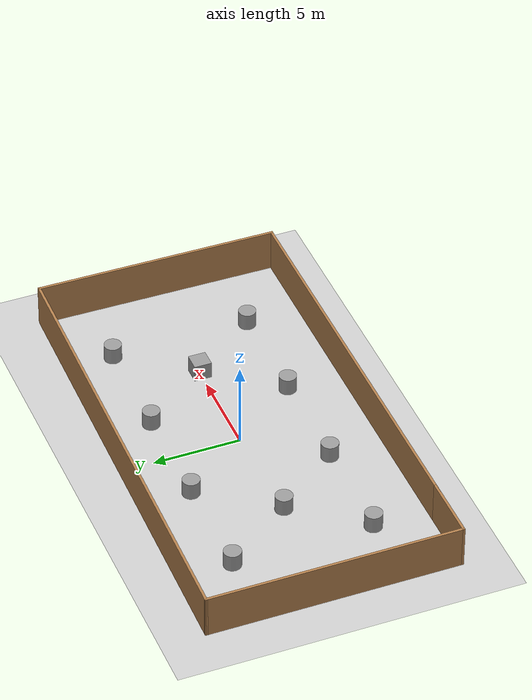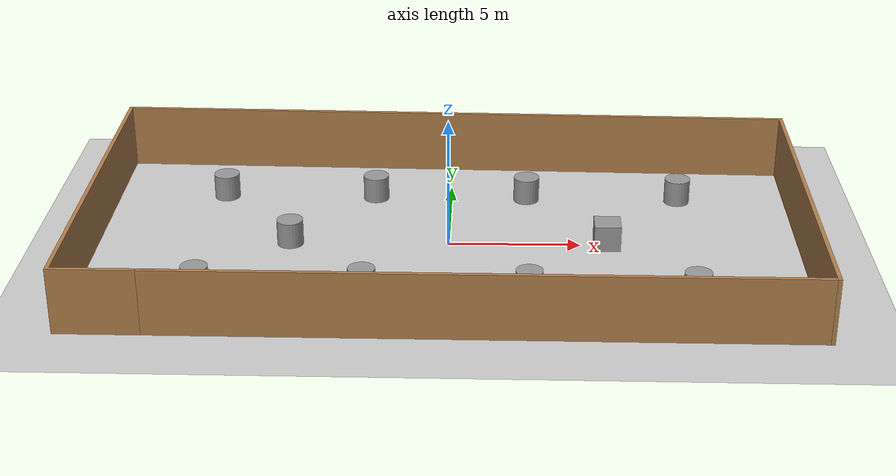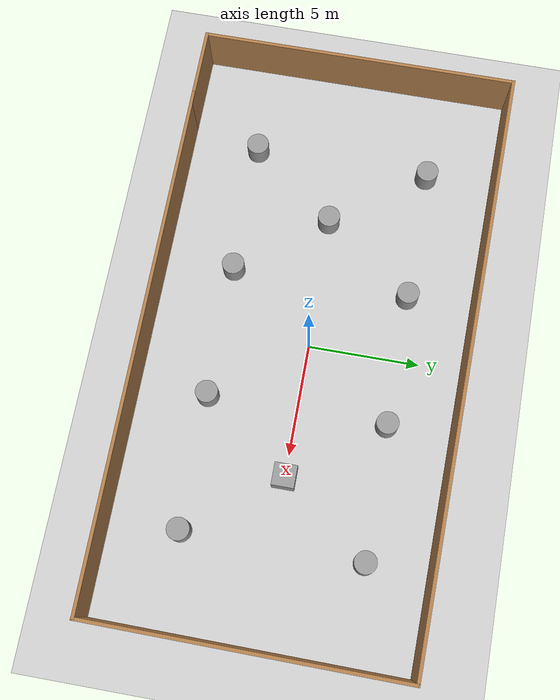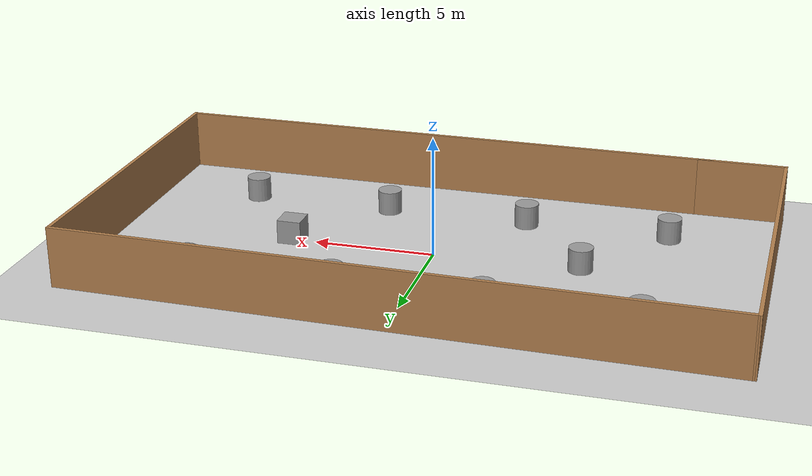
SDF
<sdf version="1.7">
 <world name="default">
  <light name="sun" type="directional">
   <pose>0 0 10 0 -0 0</pose>
   <diffuse>0.8 0.8 0.8 1</diffuse>
   <specular>0.2 0.2 0.2 1</specular>
   <attenuation>
    <range>1000</range>
    <constant>0.9</constant>
    <linear>0.01</linear>
    <quadratic>0.001</quadratic>
   </attenuation>
   <direction>-0.5 0.1 -0.9</direction>
   <spot><inner_angle>0</inner_angle><outer_angle>0</outer_angle><falloff>0</falloff></spot>
  </light>
  <model name="ground_plane">
   <static>1</static>
   <link name="link">
    <collision name="collision">
     <geometry><plane><normal>0 0 1</normal><size>100 100</size></plane></geometry>
     <surface>
      <contact><collide_bitmask>65535</collide_bitmask></contact>
      <friction><ode><mu>100</mu><mu2>50</mu2></ode></friction>
     </surface>
    </collision>
    <visual name="visual">
     <cast_shadows>0</cast_shadows>
     <geometry><plane><normal>0 0 1</normal><size>100 100</size></plane></geometry>
     <material>
      <script><uri>file://media/materials/scripts/gazebo.material</uri><name>Gazebo/Grey</name></script>
     </material>
    </visual>
   </link>
  </model>
  <gravity>0 0 -9.8</gravity>
  <magnetic_field>6e-06 2.3e-05 -4.2e-05</magnetic_field>
  <atmosphere type="adiabatic"/>
  <physics type="ode">
   <max_step_size>0.001</max_step_size>
   <real_time_factor>1</real_time_factor>
   <real_time_update_rate>1000</real_time_update_rate>
  </physics>
  <scene><ambient>0.4 0.4 0.4 1</ambient><background>0.7 0.7 0.7 1</background><shadows>1</shadows></scene>
  <spherical_coordinates>
   <surface_model>EARTH_WGS84</surface_model>
   <latitude_deg>0</latitude_deg>
   <longitude_deg>0</longitude_deg>
   <elevation>0</elevation>
   <heading_deg>0</heading_deg>
  </spherical_coordinates>
  <model name="car1_test">
   <link name="Wall_1">
    <collision name="Wall_1_Collision">
     <geometry><box><size>23.6436 0.15 2.5</size></box></geometry>
     <pose>0 0 1.25 0 -0 0</pose>
    </collision>
    <visual name="Wall_1_Visual">
     <pose>0 0 1.25 0 -0 0</pose>
     <geometry><box><size>23.6436 0.15 2.5</size></box></geometry>
     <material>
      <script><uri>file://media/materials/scripts/gazebo.material</uri><name>Gazebo/Wood</name></script>
      <ambient>1 1 1 1</ambient>
     </material>
     <meta><layer>0</layer></meta>
    </visual>
    <pose>1.4708 -7.17268 0 0 -0 0</pose>
   </link>
   <link name="Wall_10">
    <collision name="Wall_10_Collision">
     <geometry><box><size>14.0004 0.15 2.5</size></box></geometry>
     <pose>0 0 1.25 0 -0 0</pose>
    </collision>
    <visual name="Wall_10_Visual">
     <pose>0 0 1.25 0 -0 0</pose>
     <geometry><box><size>14.0004 0.15 2.5</size></box></geometry>
     <material>
      <script><uri>file://media/materials/scripts/gazebo.material</uri><name>Gazebo/Wood</name></script>
      <ambient>1 1 1 1</ambient>
     </material>
     <meta><layer>0</layer></meta>
    </visual>
    <pose>13.308 -0.253083 0 0 -0 -1.57848</pose>
   </link>
   <link name="Wall_5">
    <collision name="Wall_5_Collision">
     <geometry><box><size>3.75 0.15 2.5</size></box></geometry>
     <pose>0 0 1.25 0 -0 0</pose>
    </collision>
    <visual name="Wall_5_Visual">
     <pose>0 0 1.25 0 -0 0</pose>
     <geometry><box><size>3.75 0.15 2.5</size></box></geometry>
     <material>
      <script><uri>file://media/materials/scripts/gazebo.material</uri><name>Gazebo/Wood</name></script>
      <ambient>1 1 1 1</ambient>
     </material>
     <meta><layer>0</layer></meta>
    </visual>
    <pose>-11.5612 -7.17268 0 0 -0 0</pose>
   </link>
   <link name="Wall_8">
    <collision name="Wall_8_Collision">
     <geometry><box><size>14.5 0.15 2.5</size></box></geometry>
     <pose>0 0 1.25 0 -0 0</pose>
    </collision>
    <visual name="Wall_8_Visual">
     <pose>0 0 1.25 0 -0 0</pose>
     <geometry><box><size>14.5 0.15 2.5</size></box></geometry>
     <material>
      <script><uri>file://media/materials/scripts/gazebo.material</uri><name>Gazebo/Wood</name></script>
      <ambient>1 1 1 1</ambient>
     </material>
     <meta><layer>0</layer></meta>
    </visual>
    <pose>-13.3612 0.002321 0 0 -0 1.5708</pose>
   </link>
   <link name="Wall_9">
    <collision name="Wall_9_Collision">
     <geometry><box><size>26.8772 0.15 2.5</size></box></geometry>
     <pose>0 0 1.25 0 -0 0</pose>
    </collision>
    <visual name="Wall_9_Visual">
     <pose>0 0 1.25 0 -0 0</pose>
     <geometry><box><size>26.8772 0.15 2.5</size></box></geometry>
     <material>
      <script><uri>file://media/materials/scripts/gazebo.material</uri><name>Gazebo/Wood</name></script>
      <ambient>1 1 1 1</ambient>
     </material>
     <meta><layer>0</layer></meta>
    </visual>
    <pose>-0 6.93792 0 0 -0 -0.017916</pose>
   </link>
   <static>1</static>
  </model>
  <model name="unit_cylinder">
   <pose>-3 -4 0.499997 3e-06 -2e-06 -6.2e-05</pose>
   <link name="link">
    <inertial>
     <mass>1</mass>
     <inertia><ixx>0.145833</ixx><ixy>0</ixy><ixz>0</ixz><iyy>0.145833</iyy><iyz>0</iyz><izz>0.125</izz></inertia>
    </inertial>
    <collision name="collision">
     <geometry><cylinder><radius>0.5</radius><length>1</length></cylinder></geometry>
    </collision>
    <visual name="visual">
     <geometry><cylinder><radius>0.5</radius><length>1</length></cylinder></geometry>
     <material>
      <script><name>Gazebo/Grey</name><uri>file://media/materials/scripts/gazebo.material</uri></script>
     </material>
    </visual>
   </link>
  </model>
  <model name="unit_cylinder_0">
   <pose>-3.00001 4 0.499992 -3e-06 2e-06 0</pose>
   <link name="link">
    <inertial>
     <mass>1</mass>
     <inertia><ixx>0.145833</ixx><ixy>0</ixy><ixz>0</ixz><iyy>0.145833</iyy><iyz>0</iyz><izz>0.125</izz></inertia>
    </inertial>
    <collision name="collision">
     <geometry><cylinder><radius>0.5</radius><length>1</length></cylinder></geometry>
    </collision>
    <visual name="visual">
     <geometry><cylinder><radius>0.5</radius><length>1</length></cylinder></geometry>
     <material>
      <script><name>Gazebo/Grey</name><uri>file://media/materials/scripts/gazebo.material</uri></script>
     </material>
    </visual>
   </link>
  </model>
  <model name="unit_cylinder_1">
   <pose>-6 -0.117126 0.499992 -3e-06 3e-06 0</pose>
   <link name="link">
    <inertial>
     <mass>1</mass>
     <inertia><ixx>0.145833</ixx><ixy>0</ixy><ixz>0</ixz><iyy>0.145833</iyy><iyz>0</iyz><izz>0.125</izz></inertia>
    </inertial>
    <collision name="collision">
     <geometry><cylinder><radius>0.5</radius><length>1</length></cylinder></geometry>
    </collision>
    <visual name="visual">
     <geometry><cylinder><radius>0.5</radius><length>1</length></cylinder></geometry>
     <material>
      <script><name>Gazebo/Grey</name><uri>file://media/materials/scripts/gazebo.material</uri></script>
     </material>
    </visual>
   </link>
  </model>
  <model name="unit_cylinder_2">
   <pose>-9 -4 0.499996 4e-06 2e-06 -0</pose>
   <link name="link">
    <inertial>
     <mass>1</mass>
     <inertia><ixx>0.145833</ixx><ixy>0</ixy><ixz>0</ixz><iyy>0.145833</iyy><iyz>0</iyz><izz>0.125</izz></inertia>
    </inertial>
    <collision name="collision">
     <geometry><cylinder><radius>0.5</radius><length>1</length></cylinder></geometry>
    </collision>
    <visual name="visual">
     <geometry><cylinder><radius>0.5</radius><length>1</length></cylinder></geometry>
     <material>
      <script><name>Gazebo/Grey</name><uri>file://media/materials/scripts/gazebo.material</uri></script>
     </material>
    </visual>
   </link>
  </model>
  <model name="unit_cylinder_3">
   <pose>-9 4 0.499992 -3e-06 3e-06 0</pose>
   <link name="link">
    <inertial>
     <mass>1</mass>
     <inertia><ixx>0.145833</ixx><ixy>0</ixy><ixz>0</ixz><iyy>0.145833</iyy><iyz>0</iyz><izz>0.125</izz></inertia>
    </inertial>
    <collision name="collision">
     <geometry><cylinder><radius>0.5</radius><length>1</length></cylinder></geometry>
    </collision>
    <visual name="visual">
     <geometry><cylinder><radius>0.5</radius><length>1</length></cylinder></geometry>
     <material>
      <script><name>Gazebo/Grey</name><uri>file://media/materials/scripts/gazebo.material</uri></script>
     </material>
    </visual>
   </link>
  </model>
  <model name="unit_cylinder_4">
   <pose>3 -4 0.499996 4e-06 1e-06 0</pose>
   <link name="link">
    <inertial>
     <mass>1</mass>
     <inertia><ixx>0.145833</ixx><ixy>0</ixy><ixz>0</ixz><iyy>0.145833</iyy><iyz>0</iyz><izz>0.125</izz></inertia>
    </inertial>
    <collision name="collision">
     <geometry><cylinder><radius>0.5</radius><length>1</length></cylinder></geometry>
    </collision>
    <visual name="visual">
     <geometry><cylinder><radius>0.5</radius><length>1</length></cylinder></geometry>
     <material>
      <script><name>Gazebo/Grey</name><uri>file://media/materials/scripts/gazebo.material</uri></script>
     </material>
    </visual>
   </link>
  </model>
  <model name="unit_cylinder_5">
   <pose>3 4 0.499996 -3e-06 1e-06 0</pose>
   <link name="link">
    <inertial>
     <mass>1</mass>
     <inertia><ixx>0.145833</ixx><ixy>0</ixy><ixz>0</ixz><iyy>0.145833</iyy><iyz>0</iyz><izz>0.125</izz></inertia>
    </inertial>
    <collision name="collision">
     <geometry><cylinder><radius>0.5</radius><length>1</length></cylinder></geometry>
    </collision>
    <visual name="visual">
     <geometry><cylinder><radius>0.5</radius><length>1</length></cylinder></geometry>
     <material>
      <script><name>Gazebo/Grey</name><uri>file://media/materials/scripts/gazebo.material</uri></script>
     </material>
    </visual>
   </link>
  </model>
  <model name="unit_box_0">
   <pose>6 0 0.499995 0 1e-05 0</pose>
   <link name="link">
    <inertial>
     <mass>1</mass>
     <inertia>
      <ixx>0.166667</ixx>
      <ixy>0</ixy>
      <ixz>0</ixz>
      <iyy>0.166667</iyy>
      <iyz>0</iyz>
      <izz>0.166667</izz>
     </inertia>
    </inertial>
    <collision name="collision"><geometry><box><size>1 1 1</size></box></geometry></collision>
    <visual name="visual">
     <geometry><box><size>1 1 1</size></box></geometry>
     <material>
      <script><name>Gazebo/Grey</name><uri>file://media/materials/scripts/gazebo.material</uri></script>
     </material>
    </visual>
   </link>
  </model>
  <model name="unit_cylinder_6">
   <pose>9 -4 0.499996 3e-06 1e-06 -0</pose>
   <link name="link">
    <inertial>
     <mass>1</mass>
     <inertia><ixx>0.145833</ixx><ixy>0</ixy><ixz>0</ixz><iyy>0.145833</iyy><iyz>0</iyz><izz>0.125</izz></inertia>
    </inertial>
    <collision name="collision">
     <geometry><cylinder><radius>0.5</radius><length>1</length></cylinder></geometry>
    </collision>
    <visual name="visual">
     <geometry><cylinder><radius>0.5</radius><length>1</length></cylinder></geometry>
     <material>
      <script><name>Gazebo/Grey</name><uri>file://media/materials/scripts/gazebo.material</uri></script>
     </material>
    </visual>
   </link>
  </model>
  <model name="unit_cylinder_7">
   <pose>9 4 0.499993 -3e-06 -1e-06 -0</pose>
   <link name="link">
    <inertial>
     <mass>1</mass>
     <inertia><ixx>0.145833</ixx><ixy>0</ixy><ixz>0</ixz><iyy>0.145833</iyy><iyz>0</iyz><izz>0.125</izz></inertia>
    </inertial>
    <collision name="collision">
     <geometry><cylinder><radius>0.5</radius><length>1</length></cylinder></geometry>
    </collision>
    <visual name="visual">
     <geometry><cylinder><radius>0.5</radius><length>1</length></cylinder></geometry>
     <material>
      <script><name>Gazebo/Grey</name><uri>file://media/materials/scripts/gazebo.material</uri></script>
     </material>
    </visual>
   </link>
  </model>
 </world>
</sdf>
